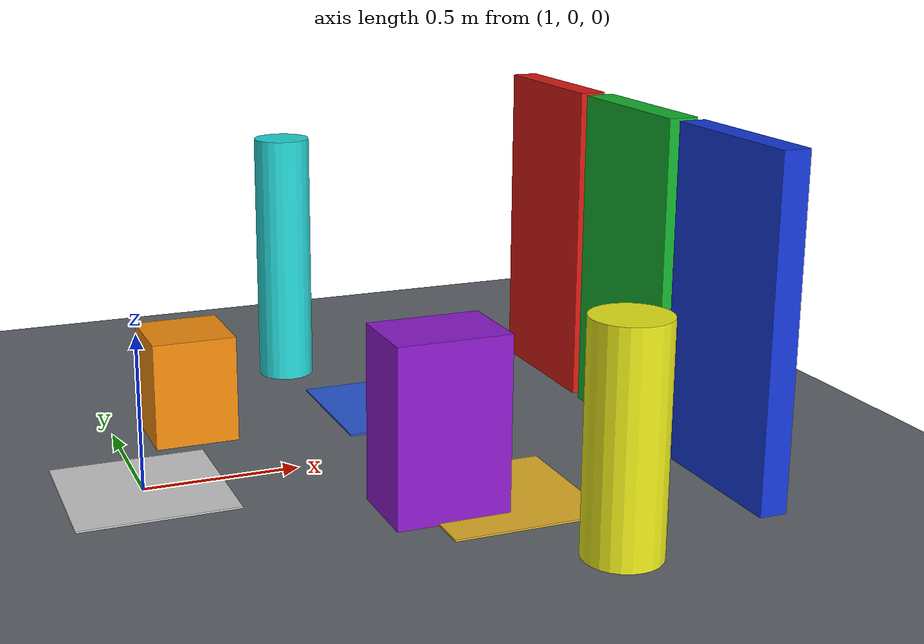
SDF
<?xml version="1.0"?>
<sdf version="1.6">
  <world name="mari_camera_test">
    <gravity>0 0 -9.80665</gravity>

    <spherical_coordinates>
      <!-- Keep GPS local ENU behavior aligned with gazebo_ros_gps_sensor demo. -->
      <heading_deg>180</heading_deg>
    </spherical_coordinates>

    <physics name="default_physics" default="true" type="ode">
      <max_step_size>0.001</max_step_size>
      <real_time_factor>1.0</real_time_factor>
      <real_time_update_rate>1000</real_time_update_rate>
    </physics>

    <scene>
      <ambient>0.55 0.55 0.55 1</ambient>
      <background>0.70 0.80 1.00 1</background>
      <shadows>true</shadows>
    </scene>

    <light name="sun" type="directional">
      <cast_shadows>true</cast_shadows>
      <pose>0 0 10 0 0 0</pose>
      <diffuse>0.9 0.9 0.85 1</diffuse>
      <specular>0.2 0.2 0.2 1</specular>
      <attenuation>
        <range>1000</range>
        <constant>0.9</constant>
        <linear>0.01</linear>
        <quadratic>0.001</quadratic>
      </attenuation>
      <direction>-0.45 0.20 -0.87</direction>
    </light>

    <model name="ground_plane">
      <static>true</static>
      <link name="link">
        <collision name="collision">
          <geometry>
            <plane>
              <normal>0 0 1</normal>
              <size>12 12</size>
            </plane>
          </geometry>
        </collision>
        <visual name="visual">
          <geometry>
            <plane>
              <normal>0 0 1</normal>
              <size>12 12</size>
            </plane>
          </geometry>
          <material>
            <ambient>0.38 0.40 0.42 1</ambient>
            <diffuse>0.38 0.40 0.42 1</diffuse>
          </material>
        </visual>
      </link>
    </model>

    <model name="floor_reference_tiles">
      <static>true</static>
      <link name="link">
        <visual name="tile_1m">
          <pose>1.0 0 0.003 0 0 0</pose>
          <geometry>
            <box>
              <size>0.50 0.50 0.006</size>
            </box>
          </geometry>
          <material>
            <ambient>0.80 0.80 0.80 1</ambient>
            <diffuse>0.80 0.80 0.80 1</diffuse>
          </material>
        </visual>
        <visual name="tile_2m_left">
          <pose>2.0 0.45 0.003 0 0 0</pose>
          <geometry>
            <box>
              <size>0.50 0.50 0.006</size>
            </box>
          </geometry>
          <material>
            <ambient>0.16 0.35 0.85 1</ambient>
            <diffuse>0.16 0.35 0.85 1</diffuse>
          </material>
        </visual>
        <visual name="tile_2m_right">
          <pose>2.0 -0.45 0.003 0 0 0</pose>
          <geometry>
            <box>
              <size>0.50 0.50 0.006</size>
            </box>
          </geometry>
          <material>
            <ambient>0.90 0.70 0.15 1</ambient>
            <diffuse>0.90 0.70 0.15 1</diffuse>
          </material>
        </visual>
      </link>
    </model>

    <model name="front_color_wall">
      <static>true</static>
      <pose>2.7 0 0 0 0 0</pose>
      <link name="link">
        <collision name="wall_collision">
          <pose>0 0 0.55 0 0 0</pose>
          <geometry>
            <box>
              <size>0.08 1.80 1.10</size>
            </box>
          </geometry>
        </collision>
        <visual name="red_left_panel">
          <pose>0 0.60 0.55 0 0 0</pose>
          <geometry>
            <box>
              <size>0.09 0.55 1.10</size>
            </box>
          </geometry>
          <material>
            <ambient>0.85 0.10 0.08 1</ambient>
            <diffuse>0.85 0.10 0.08 1</diffuse>
          </material>
        </visual>
        <visual name="green_center_panel">
          <pose>0 0 0.55 0 0 0</pose>
          <geometry>
            <box>
              <size>0.10 0.55 1.10</size>
            </box>
          </geometry>
          <material>
            <ambient>0.08 0.70 0.18 1</ambient>
            <diffuse>0.08 0.70 0.18 1</diffuse>
          </material>
        </visual>
        <visual name="blue_right_panel">
          <pose>0 -0.60 0.55 0 0 0</pose>
          <geometry>
            <box>
              <size>0.09 0.55 1.10</size>
            </box>
          </geometry>
          <material>
            <ambient>0.08 0.22 0.85 1</ambient>
            <diffuse>0.08 0.22 0.85 1</diffuse>
          </material>
        </visual>
      </link>
    </model>

    <model name="near_depth_targets">
      <static>true</static>
      <link name="link">
        <collision name="left_box_collision">
          <pose>1.25 0.45 0.18 0 0 0</pose>
          <geometry>
            <box>
              <size>0.28 0.28 0.36</size>
            </box>
          </geometry>
        </collision>
        <visual name="left_box_visual">
          <pose>1.25 0.45 0.18 0 0 0</pose>
          <geometry>
            <box>
              <size>0.28 0.28 0.36</size>
            </box>
          </geometry>
          <material>
            <ambient>0.95 0.55 0.05 1</ambient>
            <diffuse>0.95 0.55 0.05 1</diffuse>
          </material>
        </visual>
        <collision name="right_box_collision">
          <pose>1.80 -0.45 0.28 0 0 0</pose>
          <geometry>
            <box>
              <size>0.36 0.26 0.56</size>
            </box>
          </geometry>
        </collision>
        <visual name="right_box_visual">
          <pose>1.80 -0.45 0.28 0 0 0</pose>
          <geometry>
            <box>
              <size>0.36 0.26 0.56</size>
            </box>
          </geometry>
          <material>
            <ambient>0.55 0.10 0.80 1</ambient>
            <diffuse>0.55 0.10 0.80 1</diffuse>
          </material>
        </visual>
      </link>
    </model>

    <model name="side_landmarks">
      <static>true</static>
      <link name="link">
        <collision name="left_pillar_collision">
          <pose>1.75 0.95 0.45 0 0 0</pose>
          <geometry>
            <cylinder>
              <radius>0.10</radius>
              <length>0.90</length>
            </cylinder>
          </geometry>
        </collision>
        <visual name="left_pillar_visual">
          <pose>1.75 0.95 0.45 0 0 0</pose>
          <geometry>
            <cylinder>
              <radius>0.10</radius>
              <length>0.90</length>
            </cylinder>
          </geometry>
          <material>
            <ambient>0.15 0.85 0.85 1</ambient>
            <diffuse>0.15 0.85 0.85 1</diffuse>
          </material>
        </visual>
        <collision name="right_pillar_collision">
          <pose>2.15 -0.95 0.35 0 0 0</pose>
          <geometry>
            <cylinder>
              <radius>0.12</radius>
              <length>0.70</length>
            </cylinder>
          </geometry>
        </collision>
        <visual name="right_pillar_visual">
          <pose>2.15 -0.95 0.35 0 0 0</pose>
          <geometry>
            <cylinder>
              <radius>0.12</radius>
              <length>0.70</length>
            </cylinder>
          </geometry>
          <material>
            <ambient>0.92 0.92 0.10 1</ambient>
            <diffuse>0.92 0.92 0.10 1</diffuse>
          </material>
        </visual>
      </link>
    </model>
  </world>
</sdf>
